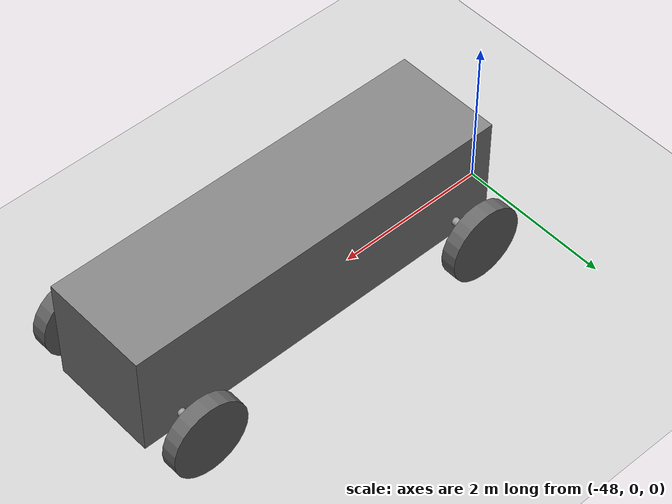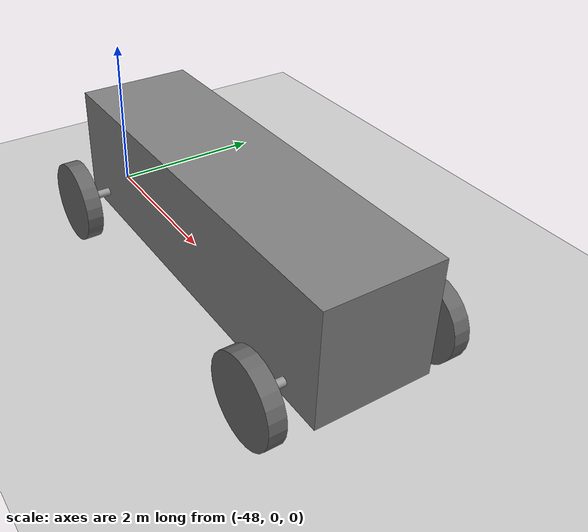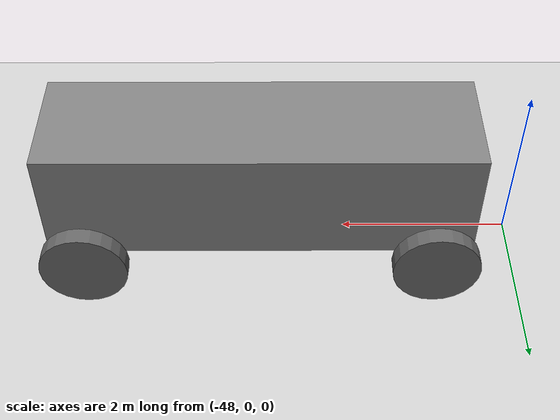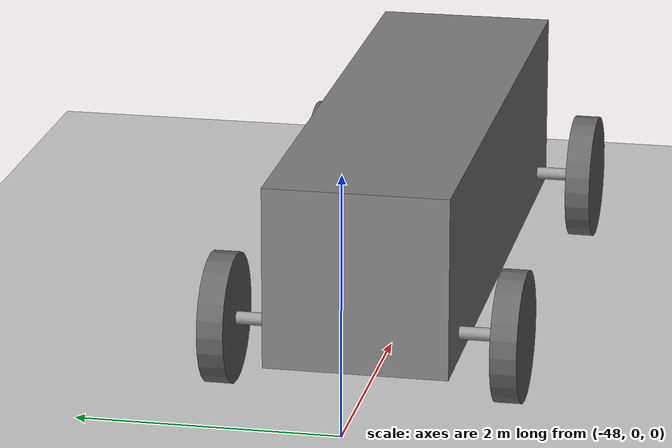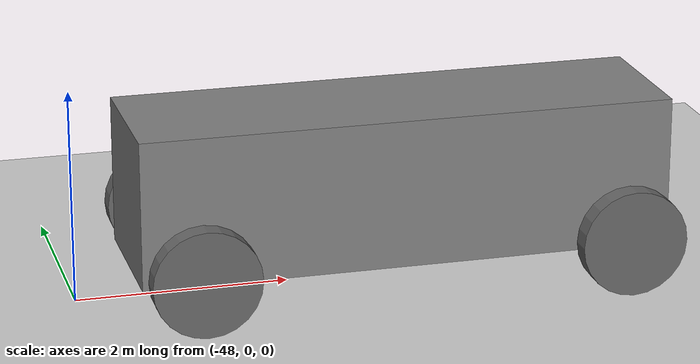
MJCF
<mujoco>
    <worldbody>
        <light diffuse=".5 .5 .5" pos="0 0 200" dir="0 0 -1" />
        <geom type="plane" size="50 5 0.1" rgba="0.8 0.8 0.8 1" />

        <body name="car" pos="-45 0 1">
            <joint type="free" axis="0 0 0" pos="0 0 0"/>
            <geom name="car_geom" type="box" size="2.5 0.7 0.7" />

            <body name="axle1" pos="-2 0 -0.5">
                <joint type="hinge" axis="0 1 0" pos="0 0 0"/>
                <geom type="cylinder" size="0.05 1" euler="90 0 0" rgba="0.6 0.6 0.6 1"/>

                <body name="wheel1" pos="0 -1.1 0">
                    <joint type="hinge" axis="0 1 0" pos="0 0 0"/>
                    <geom type="cylinder" size="0.5 0.1" euler="90 0 0" rgba="0.4 0.4 0.4 1" />
                </body>

                <body name="wheel2" pos="0 1.1 0">
                    <joint type="hinge" axis="0 1 0" pos="0 0 0"/>
                    <geom type="cylinder" size="0.5 0.1" euler="90 0 0" rgba="0.4 0.4 0.4 1" />
                </body>
            </body>

            <body name="axle2" pos="2 0 -0.5">
                <joint type="hinge" axis="0 1 0" pos="0 0 0"/>
                <geom type="cylinder" size="0.05 1" euler="90 0 0" rgba="0.6 0.6 0.6 1"/>

                <body name="wheel3" pos="0 -1.1 0">
                    <joint type="hinge" axis="0 1 0" pos="0 0 0"/>
                    <geom type="cylinder" size="0.5 0.1" euler="90 0 0" rgba="0.4 0.4 0.4 1" />
                </body>

                <body name="wheel4" pos="0 1.1 0">
                    <joint type="hinge" axis="0 1 0" pos="0 0 0"/>
                    <geom type="cylinder" size="0.5 0.1" euler="90 0 0" rgba="0.4 0.4 0.4 1" />
                </body>
            </body>
        </body>
    </worldbody>
</mujoco>
